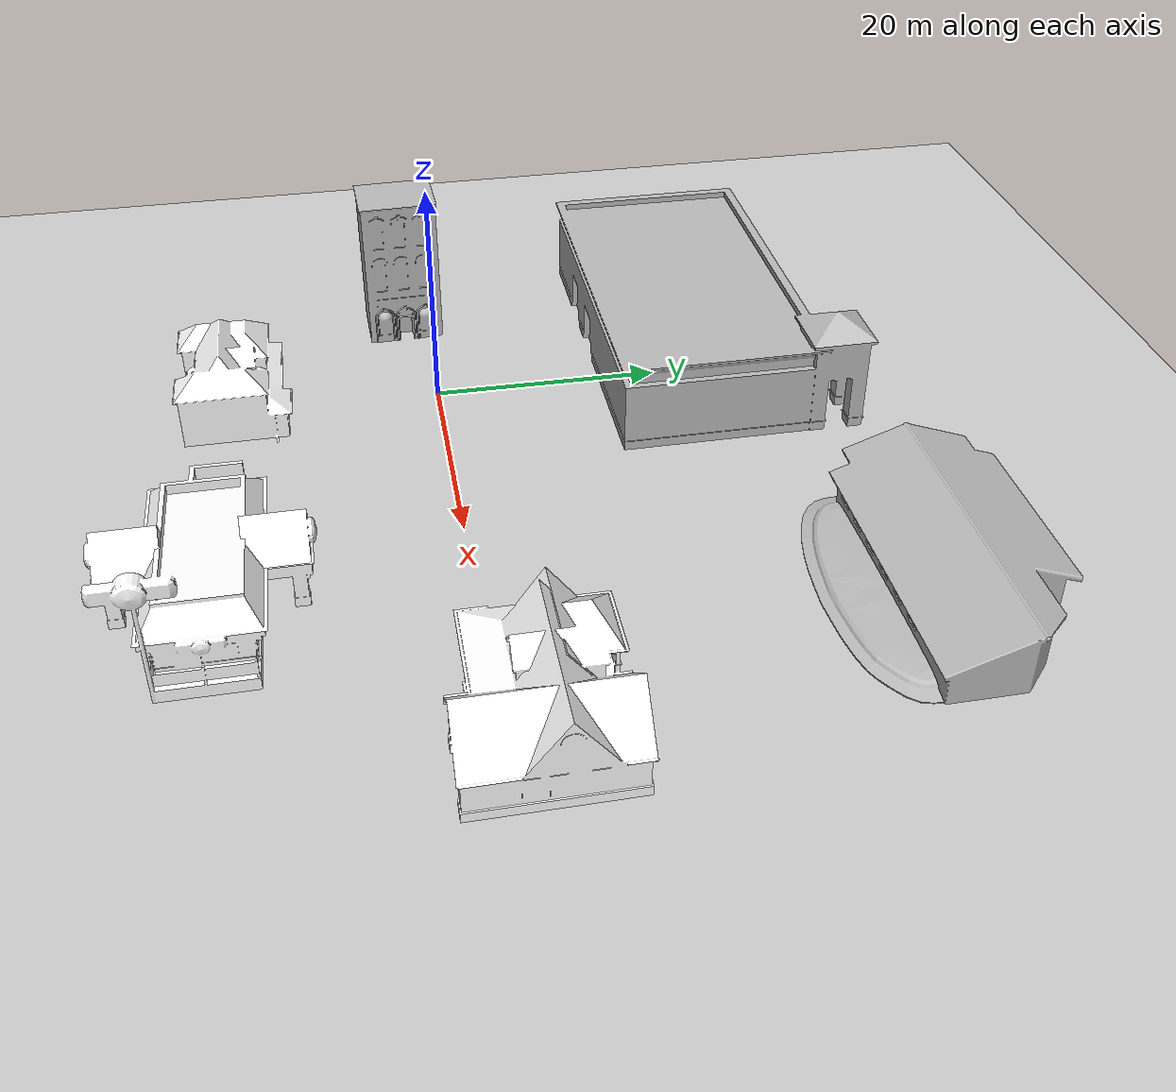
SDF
<sdf version="1.6">
 <world name="default">
  <light name="sun" type="directional">
   <pose>0 0 10 0 -0 0</pose>
   <diffuse>0.8 0.8 0.8 1</diffuse>
   <specular>0.2 0.2 0.2 1</specular>
   <attenuation>
    <range>1000</range>
    <constant>0.9</constant>
    <linear>0.01</linear>
    <quadratic>0.001</quadratic>
   </attenuation>
   <direction>-0.5 0.1 -0.9</direction>
  </light>
  <model name="ground_plane">
   <static>1</static>
   <link name="link">
    <collision name="collision">
     <geometry><plane><normal>0 0 1</normal><size>100 100</size></plane></geometry>
     <surface>
      <contact><collide_bitmask>65535</collide_bitmask></contact>
      <friction><ode><mu>100</mu><mu2>50</mu2></ode></friction>
     </surface>
    </collision>
    <visual name="visual">
     <cast_shadows>0</cast_shadows>
     <geometry><plane><normal>0 0 1</normal><size>100 100</size></plane></geometry>
     <material>
      <script><uri>file://media/materials/scripts/gazebo.material</uri><name>Gazebo/Grey</name></script>
     </material>
    </visual>
   </link>
  </model>
  <gravity>0 0 -9.8</gravity>
  <magnetic_field>6e-06 2.3e-05 -4.2e-05</magnetic_field>
  <atmosphere type="adiabatic"/>
  <physics name="default_physics" default="0" type="ode">
   <max_step_size>0.001</max_step_size>
   <real_time_factor>1</real_time_factor>
   <real_time_update_rate>1000</real_time_update_rate>
  </physics>
  <scene><ambient>0.4 0.4 0.4 1</ambient><background>0.7 0.7 0.7 1</background><shadows>1</shadows></scene>
  <spherical_coordinates>
   <surface_model>EARTH_WGS84</surface_model>
   <latitude_deg>0</latitude_deg>
   <longitude_deg>0</longitude_deg>
   <elevation>0</elevation>
   <heading_deg>0</heading_deg>
  </spherical_coordinates>
  <model name="Fast Food">
   <static>1</static>
   <link name="link">
    <pose>0 0 3.15931 0 -0 0</pose>
    <collision name="collision">
     <geometry><mesh><scale>3 3 2</scale><uri>model://fast_food/meshes/fast_food.dae</uri></mesh></geometry>
    </collision>
    <visual name="visual">
     <geometry><mesh><scale>3 3 2</scale><uri>model://fast_food/meshes/fast_food.dae</uri></mesh></geometry>
     <material>
      <script>
       <uri>model://fast_food/materials/scripts</uri>
       <uri>model://fast_food/materials/textures</uri>
       <name>FastFood/Diffuse</name>
      </script>
      <shader type="normal_map_tangent_space"><normal_map>FastFood_Normal.png</normal_map></shader>
     </material>
    </visual>
   </link>
   <pose>24.9232 -19.5207 0 0 -0 0</pose>
  </model>
  <model name="grocery_store">
   <static>1</static>
   <link name="link">
    <collision name="collision">
     <pose>0 0 4.04605 0 -0 0</pose>
     <geometry><box><size>32.1985 17.5425 8.09209</size></box></geometry>
    </collision>
    <visual name="visual">
     <pose>0 -1.96155 0 0 -0 0</pose>
     <geometry><mesh><uri>model://grocery_store/meshes/grocery_store.dae</uri></mesh></geometry>
    </visual>
   </link>
   <pose>-4.44718 23.5788 0 0 -0 0</pose>
  </model>
  <model name="law_office">
   <static>1</static>
   <link name="link">
    <collision name="collision">
     <pose>0 0 6.96244 0 -0 0</pose>
     <geometry><box><size>6.84401 5.43165 13.9249</size></box></geometry>
    </collision>
    <visual name="visual">
     <geometry><mesh><uri>model://law_office/meshes/law_office.dae</uri></mesh></geometry>
    </visual>
   </link>
   <pose>-13.0241 -1.99676 0 0 -0 1.60207</pose>
  </model>
  <model name="House 2">
   <static>1</static>
   <link name="link">
    <collision name="collision">
     <geometry><mesh><uri>model://house_2/meshes/house_2.dae</uri><scale>1.5 1.5 1.5</scale></mesh></geometry>
    </collision>
    <visual name="visual">
     <geometry><mesh><uri>model://house_2/meshes/house_2.dae</uri><scale>1.5 1.5 1.5</scale></mesh></geometry>
     <material>
      <script>
       <uri>model://house_2/materials/scripts</uri>
       <uri>model://house_2/materials/textures</uri>
       <uri>model://house_1/materials/textures</uri>
       <name>House_2/Diffuse</name>
      </script>
      <shader type="normal_map_tangent_space">
       <normal_map>model://house_1/materials/textures/House_1_Normal.png</normal_map>
      </shader>
     </material>
    </visual>
   </link>
   <pose>-2.47662 -18.5497 0 0 -0 0</pose>
  </model>
  <model name="House 1">
   <static>1</static>
   <link name="link">
    <collision name="collision">
     <geometry><mesh><uri>model://house_1/meshes/house_1.dae</uri><scale>1.5 1.5 1.5</scale></mesh></geometry>
    </collision>
    <visual name="visual">
     <geometry><mesh><uri>model://house_1/meshes/house_1.dae</uri><scale>1.5 1.5 1.5</scale></mesh></geometry>
     <material>
      <script>
       <uri>model://house_1/materials/scripts</uri>
       <uri>model://house_1/materials/textures</uri>
       <name>House_1/Diffuse</name>
      </script>
      <shader type="normal_map_tangent_space"><normal_map>House_1_Normal.png</normal_map></shader>
     </material>
    </visual>
   </link>
   <pose>41.9076 2.99668 0 0 -0 0</pose>
  </model>
  <model name="osrf_first_office">
   <static>1</static>
   <link name="link">
    <collision name="collision">
     <geometry><mesh><uri>model://osrf_first_office/meshes/osrf_first_office.dae</uri></mesh></geometry>
    </collision>
    <visual name="visual">
     <geometry><mesh><uri>model://osrf_first_office/meshes/osrf_first_office.dae</uri></mesh></geometry>
    </visual>
   </link>
   <pose>33.7629 36.3315 0 0 -0 0</pose>
  </model>
 </world>
</sdf>
